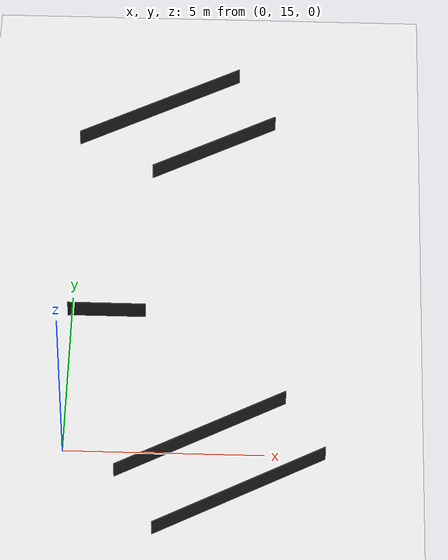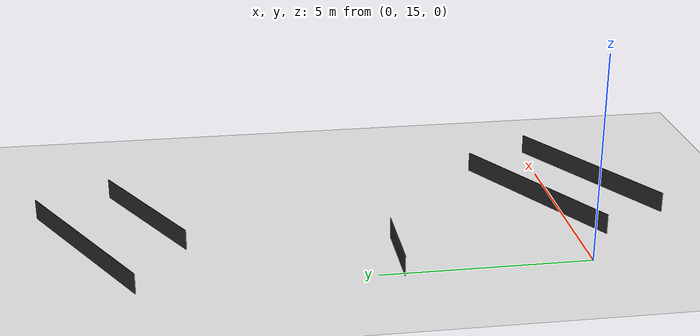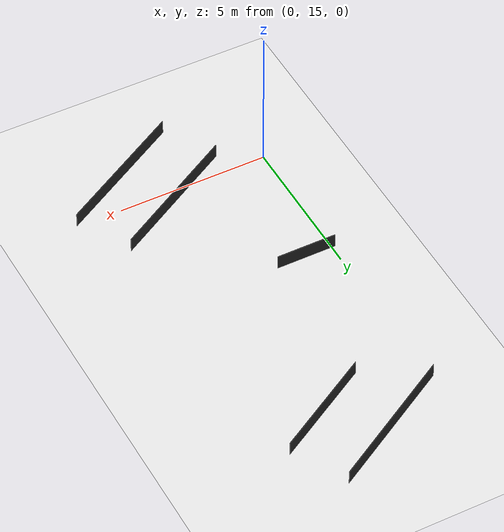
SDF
<sdf version="1.6">
 <world name="default">
  <model name="ground_plane">
   <static>1</static>
   <link name="link">
    <collision name="collision">
     <geometry><plane><normal>0 0 1</normal><size>100 100</size></plane></geometry>
     <surface><friction><ode><mu>100</mu><mu2>50</mu2></ode></friction></surface>
    </collision>
    <visual name="visual">
     <cast_shadows>0</cast_shadows>
     <geometry><plane><normal>0 0 1</normal><size>100 100</size></plane></geometry>
     <material>
      <script><uri>file://media/materials/scripts/gazebo.material</uri><name>Gazebo/White</name></script>
     </material>
    </visual>
   </link>
  </model>
  <model name="T_camber_mod">
   <link name="link_clone_0_clone_clone_1_clone_0">
    <inertial>
     <mass>1</mass>
     <inertia>
      <ixx>0.166667</ixx>
      <ixy>0</ixy>
      <ixz>0</ixz>
      <iyy>0.166667</iyy>
      <iyz>0</iyz>
      <izz>0.166667</izz>
     </inertia>
    </inertial>
    <pose>2.39592 3.79036 1e-06 5e-06 -0 2.0944</pose>
    <visual name="visual">
     <geometry><box><size>0.015 3.7053 0.5</size></box></geometry>
     <material>
      <script><name>Gazebo/FlatBlack</name><uri>file://media/materials/scripts/gazebo.material</uri></script>
      <shader type="pixel"><normal_map>__default__</normal_map></shader>
      <ambient>0.1 0.1 0.1 1</ambient>
      <diffuse>0.1 0.1 0.1 1</diffuse>
      <specular>0.01 0.01 0.01 1</specular>
      <emissive>0 0 0 1</emissive>
     </material>
     <pose>0 -0.57 0 0 -0 0</pose>
    </visual>
    <visual name="visual_2">
     <geometry><box><size>0.015 4.8453 0.5</size></box></geometry>
     <material>
      <script><name>Gazebo/FlatBlack</name><uri>file://media/materials/scripts/gazebo.material</uri></script>
      <shader type="pixel"><normal_map>__default__</normal_map></shader>
      <ambient>0.1 0.1 0.1 1</ambient>
      <diffuse>0.1 0.1 0.1 1</diffuse>
      <specular>0.01 0.01 0.01 1</specular>
      <emissive>0 0 0 1</emissive>
     </material>
     <pose>2 0 0 0 -0 0</pose>
    </visual>
    <collision name="collision">
     <pose>0 -0.57 0 0 -0 0</pose>
     <geometry><box><size>0.015 3.7053 0.5</size></box></geometry>
     <surface>
      <friction>
       <ode><mu>1</mu><mu2>1</mu2><fdir1>0 0 0</fdir1><slip1>0</slip1><slip2>0</slip2></ode>
       <torsional>
        <coefficient>1</coefficient>
        <patch_radius>0</patch_radius>
        <surface_radius>0</surface_radius>
        <use_patch_radius>1</use_patch_radius>
        <ode><slip>0</slip></ode>
       </torsional>
      </friction>
      <bounce><restitution_coefficient>0</restitution_coefficient><threshold>1e+06</threshold></bounce>
      <contact>
       <collide_without_contact>0</collide_without_contact>
       <collide_without_contact_bitmask>1</collide_without_contact_bitmask>
       <collide_bitmask>1</collide_bitmask>
       <ode>
        <soft_cfm>0</soft_cfm>
        <soft_erp>0.2</soft_erp>
        <kp>1e+13</kp>
        <kd>1</kd>
        <max_vel>0.01</max_vel>
        <min_depth>0</min_depth>
       </ode>
       <bullet>
        <split_impulse>1</split_impulse>
        <split_impulse_penetration_threshold>-0.01</split_impulse_penetration_threshold>
        <soft_cfm>0</soft_cfm>
        <soft_erp>0.2</soft_erp>
        <kp>1e+13</kp>
        <kd>1</kd>
       </bullet>
      </contact>
     </surface>
    </collision>
    <collision name="collision_1">
     <pose>2 0 0 0 -0 0</pose>
     <geometry><box><size>0.015 4.8453 0.5</size></box></geometry>
     <surface>
      <friction>
       <ode><mu>1</mu><mu2>1</mu2><fdir1>0 0 0</fdir1><slip1>0</slip1><slip2>0</slip2></ode>
       <torsional>
        <coefficient>1</coefficient>
        <patch_radius>0</patch_radius>
        <surface_radius>0</surface_radius>
        <use_patch_radius>1</use_patch_radius>
        <ode><slip>0</slip></ode>
       </torsional>
      </friction>
      <bounce><restitution_coefficient>0</restitution_coefficient><threshold>1e+06</threshold></bounce>
      <contact>
       <collide_without_contact>0</collide_without_contact>
       <collide_without_contact_bitmask>1</collide_without_contact_bitmask>
       <collide_bitmask>1</collide_bitmask>
       <ode>
        <soft_cfm>0</soft_cfm>
        <soft_erp>0.2</soft_erp>
        <kp>1e+13</kp>
        <kd>1</kd>
        <max_vel>0.01</max_vel>
        <min_depth>0</min_depth>
       </ode>
       <bullet>
        <split_impulse>1</split_impulse>
        <split_impulse_penetration_threshold>-0.01</split_impulse_penetration_threshold>
        <soft_cfm>0</soft_cfm>
        <soft_erp>0.2</soft_erp>
        <kp>1e+13</kp>
        <kd>1</kd>
       </bullet>
      </contact>
     </surface>
    </collision>
   </link>
   <link name="link_clone_clone_clone_0">
    <inertial>
     <mass>1</mass>
     <inertia>
      <ixx>0.166667</ixx>
      <ixy>0</ixy>
      <ixz>0</ixz>
      <iyy>0.166667</iyy>
      <iyz>0</iyz>
      <izz>0.166667</izz>
     </inertia>
    </inertial>
    <pose>3.8102 -7.36638 0 5e-06 -0 2.0944</pose>
    <visual name="visual_2">
     <geometry><box><size>0.015 4.8453 0.5</size></box></geometry>
     <material>
      <script><name>Gazebo/FlatBlack</name><uri>file://media/materials/scripts/gazebo.material</uri></script>
      <shader type="pixel"><normal_map>__default__</normal_map></shader>
      <ambient>0.1 0.1 0.1 1</ambient>
      <diffuse>0.1 0.1 0.1 1</diffuse>
      <specular>0.01 0.01 0.01 1</specular>
      <emissive>0 0 0 1</emissive>
     </material>
     <pose>2 0 0 0 -0 0</pose>
    </visual>
    <visual name="visual">
     <geometry><box><size>0.015 4.8453 0.5</size></box></geometry>
     <material>
      <script><name>Gazebo/FlatBlack</name><uri>file://media/materials/scripts/gazebo.material</uri></script>
      <shader type="pixel"><normal_map>__default__</normal_map></shader>
      <ambient>0.1 0.1 0.1 1</ambient>
      <diffuse>0.1 0.1 0.1 1</diffuse>
      <specular>0.01 0.01 0.01 1</specular>
      <emissive>0 0 0 1</emissive>
     </material>
    </visual>
    <collision name="collision">
     <geometry><box><size>0.015 4.8453 0.5</size></box></geometry>
     <surface>
      <friction>
       <ode><mu>1</mu><mu2>1</mu2><fdir1>0 0 0</fdir1><slip1>0</slip1><slip2>0</slip2></ode>
       <torsional>
        <coefficient>1</coefficient>
        <patch_radius>0</patch_radius>
        <surface_radius>0</surface_radius>
        <use_patch_radius>1</use_patch_radius>
        <ode><slip>0</slip></ode>
       </torsional>
      </friction>
      <bounce><restitution_coefficient>0</restitution_coefficient><threshold>1e+06</threshold></bounce>
      <contact>
       <collide_without_contact>0</collide_without_contact>
       <collide_without_contact_bitmask>1</collide_without_contact_bitmask>
       <collide_bitmask>1</collide_bitmask>
       <ode>
        <soft_cfm>0</soft_cfm>
        <soft_erp>0.2</soft_erp>
        <kp>1e+13</kp>
        <kd>1</kd>
        <max_vel>0.01</max_vel>
        <min_depth>0</min_depth>
       </ode>
       <bullet>
        <split_impulse>1</split_impulse>
        <split_impulse_penetration_threshold>-0.01</split_impulse_penetration_threshold>
        <soft_cfm>0</soft_cfm>
        <soft_erp>0.2</soft_erp>
        <kp>1e+13</kp>
        <kd>1</kd>
       </bullet>
      </contact>
     </surface>
    </collision>
    <collision name="collision_1">
     <pose>2 0 0 0 -0 0</pose>
     <geometry><box><size>0.015 4.8453 0.5</size></box></geometry>
     <surface>
      <friction>
       <ode><mu>1</mu><mu2>1</mu2><fdir1>0 0 0</fdir1><slip1>0</slip1><slip2>0</slip2></ode>
       <torsional>
        <coefficient>1</coefficient>
        <patch_radius>0</patch_radius>
        <surface_radius>0</surface_radius>
        <use_patch_radius>1</use_patch_radius>
        <ode><slip>0</slip></ode>
       </torsional>
      </friction>
      <bounce><restitution_coefficient>0</restitution_coefficient><threshold>1e+06</threshold></bounce>
      <contact>
       <collide_without_contact>0</collide_without_contact>
       <collide_without_contact_bitmask>1</collide_without_contact_bitmask>
       <collide_bitmask>1</collide_bitmask>
       <ode>
        <soft_cfm>0</soft_cfm>
        <soft_erp>0.2</soft_erp>
        <kp>1e+13</kp>
        <kd>1</kd>
        <max_vel>0.01</max_vel>
        <min_depth>0</min_depth>
       </ode>
       <bullet>
        <split_impulse>1</split_impulse>
        <split_impulse_penetration_threshold>-0.01</split_impulse_penetration_threshold>
        <soft_cfm>0</soft_cfm>
        <soft_erp>0.2</soft_erp>
        <kp>1e+13</kp>
        <kd>1</kd>
       </bullet>
      </contact>
     </surface>
    </collision>
   </link>
   <link name="link_clone_clone_clone_clone_clone_clone_clone">
    <inertial>
     <mass>1</mass>
     <inertia>
      <ixx>0.166667</ixx>
      <ixy>0</ixy>
      <ixz>0</ixz>
      <iyy>0.166667</iyy>
      <iyz>0</iyz>
      <izz>0.166667</izz>
     </inertia>
    </inertial>
    <pose>0.292336 -1.68075 -1e-06 -0 -4e-06 1.5708</pose>
    <visual name="visual">
     <geometry><box><size>0.015 2 0.5</size></box></geometry>
     <material>
      <script><name>Gazebo/FlatBlack</name><uri>file://media/materials/scripts/gazebo.material</uri></script>
      <shader type="pixel"><normal_map>__default__</normal_map></shader>
      <ambient>0.1 0.1 0.1 1</ambient>
      <diffuse>0.1 0.1 0.1 1</diffuse>
      <specular>0.01 0.01 0.01 1</specular>
      <emissive>0 0 0 1</emissive>
     </material>
    </visual>
    <collision name="collision">
     <geometry><box><size>0.015 2 0.5</size></box></geometry>
     <surface>
      <friction>
       <ode><mu>1</mu><mu2>1</mu2><fdir1>0 0 0</fdir1><slip1>0</slip1><slip2>0</slip2></ode>
       <torsional>
        <coefficient>1</coefficient>
        <patch_radius>0</patch_radius>
        <surface_radius>0</surface_radius>
        <use_patch_radius>1</use_patch_radius>
        <ode><slip>0</slip></ode>
       </torsional>
      </friction>
      <bounce><restitution_coefficient>0</restitution_coefficient><threshold>1e+06</threshold></bounce>
      <contact>
       <collide_without_contact>0</collide_without_contact>
       <collide_without_contact_bitmask>1</collide_without_contact_bitmask>
       <collide_bitmask>1</collide_bitmask>
       <ode>
        <soft_cfm>0</soft_cfm>
        <soft_erp>0.2</soft_erp>
        <kp>1e+13</kp>
        <kd>1</kd>
        <max_vel>0.01</max_vel>
        <min_depth>0</min_depth>
       </ode>
       <bullet>
        <split_impulse>1</split_impulse>
        <split_impulse_penetration_threshold>-0.01</split_impulse_penetration_threshold>
        <soft_cfm>0</soft_cfm>
        <soft_erp>0.2</soft_erp>
        <kp>1e+13</kp>
        <kd>1</kd>
       </bullet>
      </contact>
     </surface>
    </collision>
   </link>
   <static>1</static>
   <pose>0.58953 21.1021 0.25 0 -0 0</pose>
  </model>
 </world>
</sdf>
